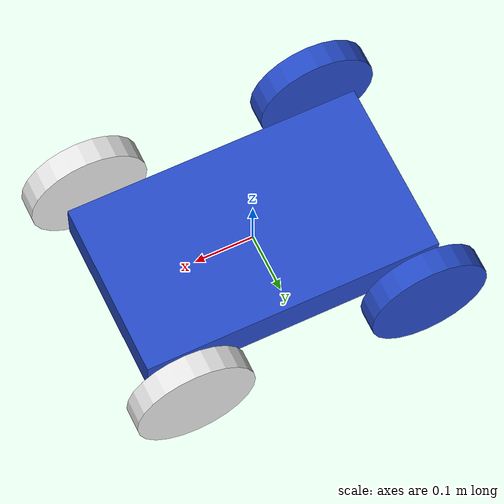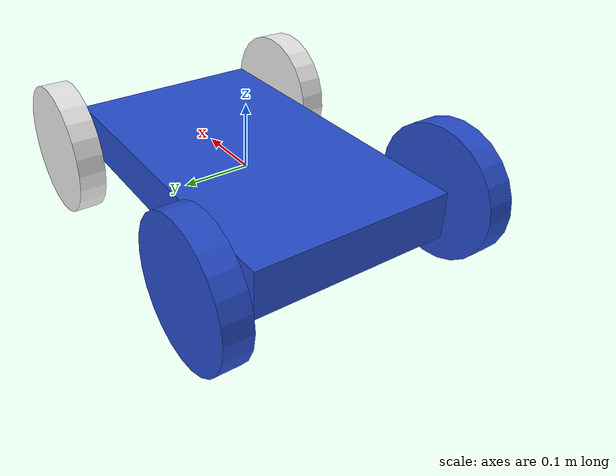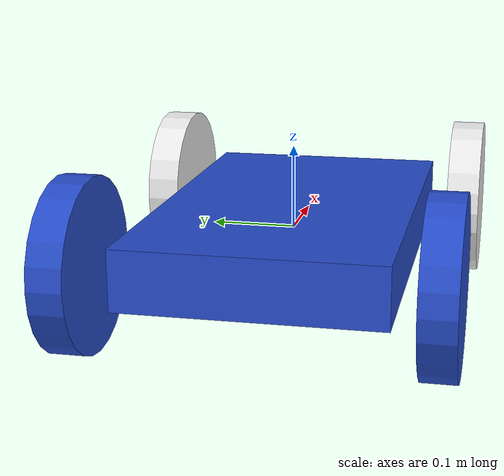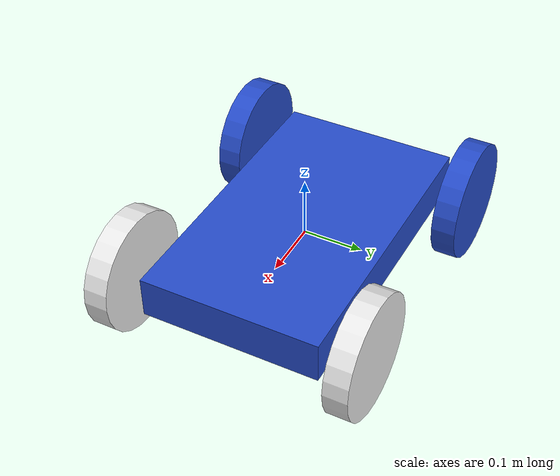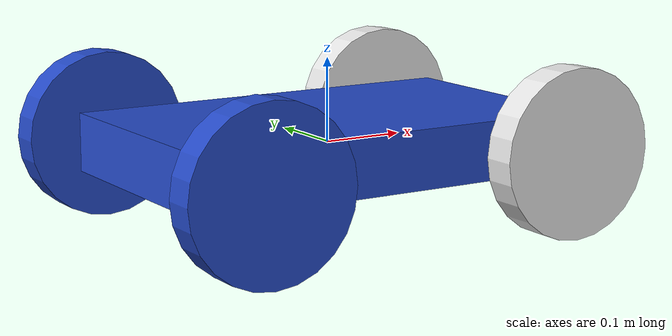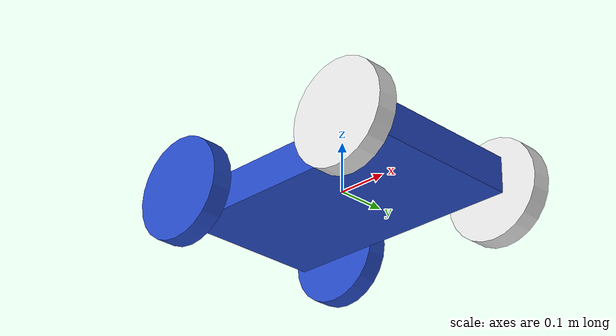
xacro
<?xml version="1.0" ?>

<robot name="castor" xmlns:xacro="http://www.ros.org/wiki/xacro">

  <xacro:include filename="$(find vehicle_description)/urdf/cart_materials.xacro" />
  <xacro:include filename="$(find vehicle_description)/urdf/cart.gazebo" />
  <xacro:include filename="$(find vehicle_description)/urdf/cart_macros.xacro" />

  <link name="link_chassis">
    <!-- pose and inertial -->
    <pose>0 0 0.1 0 0 0</pose>
    <inertial>
      <mass value="5"/>
      <origin rpy="0 0 0" xyz="0 0 0.1"/>
      <inertia ixx="0.0395416666667" ixy="0" ixz="0" iyy="0.106208333333" iyz="0" izz="0.106208333333"/>
    </inertial>
    <!-- body -->
    <collision name="collision_chassis">
      <geometry>
        <box size="0.5 0.3 0.07"/>
      </geometry>
    </collision>
    <visual>
      <origin rpy="0 0 0" xyz="0 0 0"/>
      <geometry>
        <box size="0.5 0.3 0.07"/>
      </geometry>
      <material name="blue"/>
    </visual>
  </link>

  <xacro:link_wheel name="link_right_rear_wheel" />
  <xacro:joint_wheel name="joint_right_rear_wheel" child="link_right_rear_wheel" origin_xyz="-0.2 0.20 0" />

  <xacro:link_wheel name="link_left_rear_wheel" />
  <xacro:joint_wheel name="joint_left_rear_wheel" child="link_left_rear_wheel" origin_xyz="-0.2 -0.20 0" />

  <xacro:link_wheel name="link_right_front_wheel" />
  <xacro:joint_wheel name="joint_right_front_wheel" child="link_right_front_wheel" origin_xyz="0.2 0.20 0" />

  <xacro:link_wheel name="link_left_front_wheel" />
  <xacro:joint_wheel name="joint_left_front_wheel" child="link_left_front_wheel" origin_xyz="0.2 -0.20 0" />

</robot>

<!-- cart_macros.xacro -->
<robot>

<macro name="cylinder_inertia" params="mass r l">
  <inertia  ixx="${mass*(3*r*r+l*l)/12}" ixy = "0" ixz = "0"
            iyy="${mass*(3*r*r+l*l)/12}" iyz = "0"
            izz="${mass*(r*r)/2}" />
</macro>

<macro name="link_wheel" params="name">
    <link name="${name}">
        <inertial>
          <mass value="0.2"/>
          <origin rpy="0 1.5707 1.5707" xyz="0 0 0"/>
          <inertia ixx="0.000526666666667" ixy="0" ixz="0" iyy="0.000526666666667" iyz="0" izz="0.001"/>
        </inertial>
        <collision name="${name}_collision">
          <origin rpy="0 1.5707 1.5707" xyz="0 0 0"/>
          <geometry>
            <cylinder length="0.04" radius="0.1"/>
          </geometry>
        </collision>
        <visual name="${name}_visual">
          <origin rpy="0 1.5707 1.5707" xyz="0 0 0"/>
          <geometry>
            <cylinder length="0.04" radius="0.1"/>
          </geometry>
        </visual>
    </link>
</macro>

<macro name="joint_wheel" params="name child origin_xyz">
  <joint name="${name}" type="continuous">
    <origin rpy="0 0 0" xyz="${origin_xyz}"/>
    <child link="${child}"/>
    <parent link="link_chassis"/>
    <axis rpy="0 0 0" xyz="0 1 0"/>
    <limit effort="10000" velocity="1000"/>
    <joint_properties damping="1.0" friction="1.0"/>
  </joint>
</macro>

</robot>
